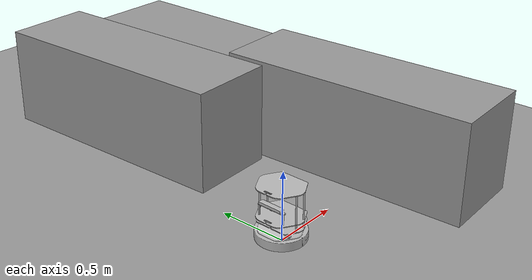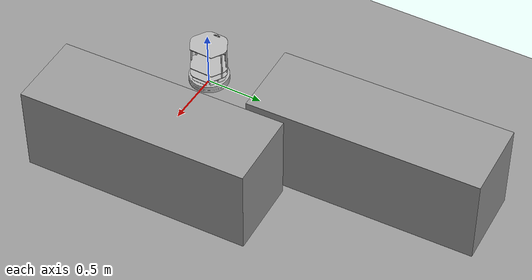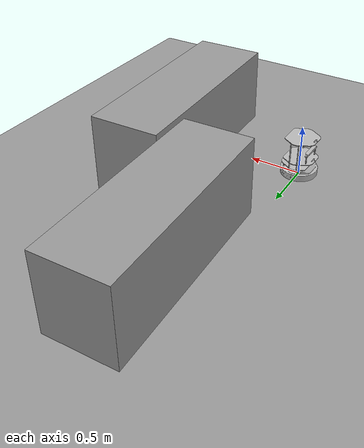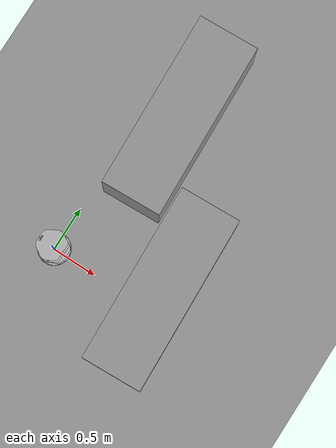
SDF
<sdf version="1.6">
 <world name="default">
  <light name="sun" type="directional">
   <pose>0 0 10 0 -0 0</pose>
   <diffuse>0.8 0.8 0.8 1</diffuse>
   <specular>0.2 0.2 0.2 1</specular>
   <attenuation>
    <range>1000</range>
    <constant>0.9</constant>
    <linear>0.01</linear>
    <quadratic>0.001</quadratic>
   </attenuation>
   <direction>0.5 0.1 -0.9</direction>
  </light>
  <scene><ambient>0.4 0.4 0.4 1</ambient><background>0.7 0.7 0.7 1</background><shadows>1</shadows></scene>
  <physics name="default_physics" default="0" type="ode">
   <max_step_size>0.01</max_step_size>
   <real_time_factor>1</real_time_factor>
   <real_time_update_rate>100</real_time_update_rate>
  </physics>
  <model name="ground_plane_0">
   <static>1</static>
   <link name="link">
    <collision name="collision">
     <geometry><plane><normal>0 0 1</normal><size>100 100</size></plane></geometry>
     <surface><friction><ode><mu>100</mu><mu2>50</mu2></ode></friction></surface>
    </collision>
    <visual name="visual">
     <cast_shadows>0</cast_shadows>
     <geometry><plane><normal>0 0 1</normal><size>100 100</size></plane></geometry>
     <material>
      <script><uri>file://media/materials/scripts/gazebo.material</uri><name>Gazebo/Grey</name></script>
     </material>
    </visual>
    <velocity_decay><linear>0</linear><angular>0</angular></velocity_decay>
   </link>
   <pose>0.497681 0 0 0 -0 0</pose>
  </model>
  <gravity>0 0 -9.8</gravity>
  <magnetic_field>6e-06 2.3e-05 -4.2e-05</magnetic_field>
  <atmosphere type="adiabatic"/>
  <spherical_coordinates>
   <surface_model>EARTH_WGS84</surface_model>
   <latitude_deg>0</latitude_deg>
   <longitude_deg>0</longitude_deg>
   <elevation>0</elevation>
   <heading_deg>0</heading_deg>
  </spherical_coordinates>
  <model name="mobile_base">
   <link name="base_footprint">
    <inertial>
     <pose>-0.002635 -4.1e-05 0.129243 0 -0 0</pose>
     <mass>4.6973</mass>
     <inertia>
      <ixx>0.1365</ixx>
      <ixy>-2.51802e-05</ixy>
      <ixz>0.0108194</ixz>
      <iyy>0.132157</iyy>
      <iyz>4.89572e-05</iyz>
      <izz>0.0741648</izz>
     </inertia>
    </inertial>
    <collision name="base_footprint_fixed_joint_lump__base_collision">
     <pose>0 0 0.06969 0 -0 0</pose>
     <geometry><cylinder><length>0.10938</length><radius>0.178</radius></cylinder></geometry>
    </collision>
    <collision name="base_footprint_fixed_joint_lump__camera_link_collision_1">
     <pose>-0.087 -0.0015 0.2972 0 -0 0</pose>
     <geometry><box><size>0.073 0.276 0.072</size></box></geometry>
    </collision>
    <collision name="base_footprint_fixed_joint_lump__caster_back_link_collision_2">
     <pose>-0.135 0 0.0192 -1.5708 0 0</pose>
     <geometry><cylinder><length>0.0176</length><radius>0.017</radius></cylinder></geometry>
     <surface>
      <contact><ode><kp>1e+06</kp><kd>100</kd><max_vel>1</max_vel><min_depth>0.001</min_depth></ode></contact>
      <friction><ode><mu>0</mu><mu2>0</mu2></ode></friction>
     </surface>
    </collision>
    <collision name="base_footprint_fixed_joint_lump__caster_front_link_collision_3">
     <pose>0.115 0 0.0172 -1.5708 0 0</pose>
     <geometry><cylinder><length>0.0176</length><radius>0.017</radius></cylinder></geometry>
     <surface>
      <contact><ode><kp>1e+06</kp><kd>100</kd><max_vel>1</max_vel><min_depth>0.001</min_depth></ode></contact>
      <friction><ode><mu>0</mu><mu2>0</mu2></ode></friction>
     </surface>
    </collision>
    <collision name="base_footprint_fixed_joint_lump__mount_asus_xtion_pro_link_collision_4">
     <pose>-0.1024 0 0.2822 0 -0 0</pose>
     <geometry><box><size>0.033 0.276 0.012</size></box></geometry>
    </collision>
    <collision name="base_footprint_fixed_joint_lump__plate_bottom_link_collision_5">
     <pose>0 0 0.1408 0 -0 0</pose>
     <geometry><cylinder><length>0.006</length><radius>0.17</radius></cylinder></geometry>
    </collision>
    <collision name="base_footprint_fixed_joint_lump__plate_middle_link_collision_6">
     <pose>0 0 0.1976 0 -0 0</pose>
     <geometry><cylinder><length>0.006</length><radius>0.17</radius></cylinder></geometry>
    </collision>
    <collision name="base_footprint_fixed_joint_lump__plate_top_link_collision_7">
     <pose>0 0 0.4068 0 -0 0</pose>
     <geometry><cylinder><length>0.006</length><radius>0.17</radius></cylinder></geometry>
    </collision>
    <collision name="base_footprint_fixed_joint_lump__pole_bottom_0_link_collision_8">
     <pose>0.12 0.082 0.113 0 -0 0</pose>
     <geometry><cylinder><length>0.0492</length><radius>0.006</radius></cylinder></geometry>
    </collision>
    <collision name="base_footprint_fixed_joint_lump__pole_bottom_1_link_collision_9">
     <pose>0.055 0.12 0.113 0 -0 0</pose>
     <geometry><cylinder><length>0.0492</length><radius>0.006</radius></cylinder></geometry>
    </collision>
    <collision name="base_footprint_fixed_joint_lump__pole_bottom_2_link_collision_10">
     <pose>-0.055 0.12 0.113 0 -0 0</pose>
     <geometry><cylinder><length>0.0492</length><radius>0.006</radius></cylinder></geometry>
    </collision>
    <collision name="base_footprint_fixed_joint_lump__pole_bottom_3_link_collision_11">
     <pose>0.12 -0.082 0.113 0 -0 0</pose>
     <geometry><cylinder><length>0.0492</length><radius>0.006</radius></cylinder></geometry>
    </collision>
    <collision name="base_footprint_fixed_joint_lump__pole_bottom_4_link_collision_12">
     <pose>0.055 -0.12 0.113 0 -0 0</pose>
     <geometry><cylinder><length>0.0492</length><radius>0.006</radius></cylinder></geometry>
    </collision>
    <collision name="base_footprint_fixed_joint_lump__pole_bottom_5_link_collision_13">
     <pose>-0.055 -0.12 0.113 0 -0 0</pose>
     <geometry><cylinder><length>0.0492</length><radius>0.006</radius></cylinder></geometry>
    </collision>
    <collision name="base_footprint_fixed_joint_lump__pole_kinect_0_link_collision_14">
     <pose>-0.1024 0.098 0.2474 0 -0 0</pose>
     <geometry><cylinder><length>0.0936</length><radius>0.006</radius></cylinder></geometry>
    </collision>
    <collision name="base_footprint_fixed_joint_lump__pole_kinect_1_link_collision_15">
     <pose>-0.1024 -0.098 0.2474 0 -0 0</pose>
     <geometry><cylinder><length>0.0936</length><radius>0.006</radius></cylinder></geometry>
    </collision>
    <collision name="base_footprint_fixed_joint_lump__pole_middle_0_link_collision_16">
     <pose>0.0381 0.1505 0.1742 0 -0 0</pose>
     <geometry><cylinder><length>0.0608</length><radius>0.006</radius></cylinder></geometry>
    </collision>
    <collision name="base_footprint_fixed_joint_lump__pole_middle_1_link_collision_17">
     <pose>0.0381 -0.1505 0.1742 0 -0 0</pose>
     <geometry><cylinder><length>0.0608</length><radius>0.006</radius></cylinder></geometry>
    </collision>
    <collision name="base_footprint_fixed_joint_lump__pole_middle_2_link_collision_18">
     <pose>-0.0381 0.1505 0.1742 0 -0 0</pose>
     <geometry><cylinder><length>0.0608</length><radius>0.006</radius></cylinder></geometry>
    </collision>
    <collision name="base_footprint_fixed_joint_lump__pole_middle_3_link_collision_19">
     <pose>-0.0381 -0.1505 0.1742 0 -0 0</pose>
     <geometry><cylinder><length>0.0608</length><radius>0.006</radius></cylinder></geometry>
    </collision>
    <collision name="base_footprint_fixed_joint_lump__pole_top_0_link_collision_20">
     <pose>0.0381 0.1505 0.3022 0 -0 0</pose>
     <geometry><cylinder><length>0.2032</length><radius>0.006</radius></cylinder></geometry>
    </collision>
    <collision name="base_footprint_fixed_joint_lump__pole_top_1_link_collision_21">
     <pose>0.0381 -0.1505 0.3022 0 -0 0</pose>
     <geometry><cylinder><length>0.2032</length><radius>0.006</radius></cylinder></geometry>
    </collision>
    <collision name="base_footprint_fixed_joint_lump__pole_top_2_link_collision_22">
     <pose>-0.0381 0.1505 0.3022 0 -0 0</pose>
     <geometry><cylinder><length>0.2032</length><radius>0.006</radius></cylinder></geometry>
    </collision>
    <collision name="base_footprint_fixed_joint_lump__pole_top_3_link_collision_23">
     <pose>-0.0381 -0.1505 0.3022 0 -0 0</pose>
     <geometry><cylinder><length>0.2032</length><radius>0.006</radius></cylinder></geometry>
    </collision>
    <visual name="base_footprint_fixed_joint_lump__base_link_visual">
     <pose>0.001 0 0.06219 0 -0 0</pose>
     <geometry>
      <mesh><scale>1 1 1</scale><uri>/opt/ros/kinetic/share/kobuki_description/meshes/main_body.dae</uri></mesh>
     </geometry>
     <material><script><uri>__default__</uri><name>__default__</name></script></material>
    </visual>
    <visual name="base_footprint_fixed_joint_lump__camera_link_visual_1">
     <pose>-0.102 0.002 0.3012 0 -0 0</pose>
     <geometry>
      <mesh>
       <scale>1 1 1</scale>
       <uri>/opt/ros/kinetic/share/turtlebot_description/meshes/sensors/xtion_pro_camera.dae</uri>
      </mesh>
     </geometry>
     <material><script><uri>__default__</uri><name>__default__</name></script></material>
    </visual>
    <visual name="base_footprint_fixed_joint_lump__mount_asus_xtion_pro_link_visual_2">
     <pose>-0.1024 0 0.2822 -1.5708 0 0</pose>
     <geometry>
      <mesh>
       <scale>1 1 1</scale>
       <uri>/opt/ros/kinetic/share/turtlebot_description/meshes/sensors/xtion_pro_stack.dae</uri>
      </mesh>
     </geometry>
    </visual>
    <visual name="base_footprint_fixed_joint_lump__plate_bottom_link_visual_3">
     <pose>0.02364 0 0.1408 0 -0 0</pose>
     <geometry>
      <mesh>
       <scale>1 1 1</scale>
       <uri>/opt/ros/kinetic/share/turtlebot_description/meshes/stacks/hexagons/plate_bottom.dae</uri>
      </mesh>
     </geometry>
    </visual>
    <visual name="base_footprint_fixed_joint_lump__plate_middle_link_visual_4">
     <pose>-0.01364 0 0.1976 0 -0 0</pose>
     <geometry>
      <mesh>
       <scale>1 1 1</scale>
       <uri>/opt/ros/kinetic/share/turtlebot_description/meshes/stacks/hexagons/plate_middle.dae</uri>
      </mesh>
     </geometry>
    </visual>
    <visual name="base_footprint_fixed_joint_lump__plate_top_link_visual_5">
     <pose>-0.01364 0 0.4068 0 -0 0</pose>
     <geometry>
      <mesh>
       <scale>1 1 1</scale>
       <uri>/opt/ros/kinetic/share/turtlebot_description/meshes/stacks/hexagons/plate_top.dae</uri>
      </mesh>
     </geometry>
    </visual>
    <visual name="base_footprint_fixed_joint_lump__pole_bottom_0_link_visual_6">
     <pose>0.12 0.082 0.113 0 -0 0</pose>
     <geometry>
      <mesh>
       <scale>1 1 1</scale>
       <uri>/opt/ros/kinetic/share/turtlebot_description/meshes/stacks/hexagons/pole_bottom.dae</uri>
      </mesh>
     </geometry>
    </visual>
    <visual name="base_footprint_fixed_joint_lump__pole_bottom_1_link_visual_7">
     <pose>0.055 0.12 0.113 0 -0 0</pose>
     <geometry>
      <mesh>
       <scale>1 1 1</scale>
       <uri>/opt/ros/kinetic/share/turtlebot_description/meshes/stacks/hexagons/pole_bottom.dae</uri>
      </mesh>
     </geometry>
    </visual>
    <visual name="base_footprint_fixed_joint_lump__pole_bottom_2_link_visual_8">
     <pose>-0.055 0.12 0.113 0 -0 0</pose>
     <geometry>
      <mesh>
       <scale>1 1 1</scale>
       <uri>/opt/ros/kinetic/share/turtlebot_description/meshes/stacks/hexagons/pole_bottom.dae</uri>
      </mesh>
     </geometry>
    </visual>
    <visual name="base_footprint_fixed_joint_lump__pole_bottom_3_link_visual_9">
     <pose>0.12 -0.082 0.113 0 -0 0</pose>
     <geometry>
      <mesh>
       <scale>1 1 1</scale>
       <uri>/opt/ros/kinetic/share/turtlebot_description/meshes/stacks/hexagons/pole_bottom.dae</uri>
      </mesh>
     </geometry>
    </visual>
    <visual name="base_footprint_fixed_joint_lump__pole_bottom_4_link_visual_10">
     <pose>0.055 -0.12 0.113 0 -0 0</pose>
     <geometry>
      <mesh>
       <scale>1 1 1</scale>
       <uri>/opt/ros/kinetic/share/turtlebot_description/meshes/stacks/hexagons/pole_bottom.dae</uri>
      </mesh>
     </geometry>
    </visual>
    <visual name="base_footprint_fixed_joint_lump__pole_bottom_5_link_visual_11">
     <pose>-0.055 -0.12 0.113 0 -0 0</pose>
     <geometry>
      <mesh>
       <scale>1 1 1</scale>
       <uri>/opt/ros/kinetic/share/turtlebot_description/meshes/stacks/hexagons/pole_bottom.dae</uri>
      </mesh>
     </geometry>
    </visual>
    <visual name="base_footprint_fixed_joint_lump__pole_kinect_0_link_visual_12">
     <pose>-0.1024 0.098 0.2374 0 -0 0</pose>
     <geometry>
      <mesh>
       <scale>1 1 1</scale>
       <uri>/opt/ros/kinetic/share/turtlebot_description/meshes/sensors/sensor_pole.dae</uri>
      </mesh>
     </geometry>
    </visual>
    <visual name="base_footprint_fixed_joint_lump__pole_kinect_1_link_visual_13">
     <pose>-0.1024 -0.098 0.2374 0 -0 0</pose>
     <geometry>
      <mesh>
       <scale>1 1 1</scale>
       <uri>/opt/ros/kinetic/share/turtlebot_description/meshes/sensors/sensor_pole.dae</uri>
      </mesh>
     </geometry>
    </visual>
    <visual name="base_footprint_fixed_joint_lump__pole_middle_0_link_visual_14">
     <pose>0.0381 0.1505 0.1742 3.14159 -0 3.14159</pose>
     <geometry>
      <mesh>
       <scale>1 1 1</scale>
       <uri>/opt/ros/kinetic/share/turtlebot_description/meshes/stacks/hexagons/pole_middle.dae</uri>
      </mesh>
     </geometry>
    </visual>
    <visual name="base_footprint_fixed_joint_lump__pole_middle_1_link_visual_15">
     <pose>0.0381 -0.1505 0.1742 3.14159 -0 3.14159</pose>
     <geometry>
      <mesh>
       <scale>1 1 1</scale>
       <uri>/opt/ros/kinetic/share/turtlebot_description/meshes/stacks/hexagons/pole_middle.dae</uri>
      </mesh>
     </geometry>
    </visual>
    <visual name="base_footprint_fixed_joint_lump__pole_middle_2_link_visual_16">
     <pose>-0.0381 0.1505 0.1742 3.14159 -0 3.14159</pose>
     <geometry>
      <mesh>
       <scale>1 1 1</scale>
       <uri>/opt/ros/kinetic/share/turtlebot_description/meshes/stacks/hexagons/pole_middle.dae</uri>
      </mesh>
     </geometry>
    </visual>
    <visual name="base_footprint_fixed_joint_lump__pole_middle_3_link_visual_17">
     <pose>-0.0381 -0.1505 0.1742 3.14159 -0 3.14159</pose>
     <geometry>
      <mesh>
       <scale>1 1 1</scale>
       <uri>/opt/ros/kinetic/share/turtlebot_description/meshes/stacks/hexagons/pole_middle.dae</uri>
      </mesh>
     </geometry>
    </visual>
    <visual name="base_footprint_fixed_joint_lump__pole_top_0_link_visual_18">
     <pose>0.0381 0.1505 0.3022 0 -0 0</pose>
     <geometry>
      <mesh>
       <scale>1 1 1</scale>
       <uri>/opt/ros/kinetic/share/turtlebot_description/meshes/stacks/hexagons/pole_top.dae</uri>
      </mesh>
     </geometry>
    </visual>
    <visual name="base_footprint_fixed_joint_lump__pole_top_1_link_visual_19">
     <pose>0.0381 -0.1505 0.3022 0 -0 0</pose>
     <geometry>
      <mesh>
       <scale>1 1 1</scale>
       <uri>/opt/ros/kinetic/share/turtlebot_description/meshes/stacks/hexagons/pole_top.dae</uri>
      </mesh>
     </geometry>
    </visual>
    <visual name="base_footprint_fixed_joint_lump__pole_top_2_link_visual_20">
     <pose>-0.0381 0.1505 0.3022 0 -0 0</pose>
     <geometry>
      <mesh>
       <scale>1 1 1</scale>
       <uri>/opt/ros/kinetic/share/turtlebot_description/meshes/stacks/hexagons/pole_top.dae</uri>
      </mesh>
     </geometry>
    </visual>
    <visual name="base_footprint_fixed_joint_lump__pole_top_3_link_visual_21">
     <pose>-0.0381 -0.1505 0.3022 0 -0 0</pose>
     <geometry>
      <mesh>
       <scale>1 1 1</scale>
       <uri>/opt/ros/kinetic/share/turtlebot_description/meshes/stacks/hexagons/pole_top.dae</uri>
      </mesh>
     </geometry>
    </visual>
    <sensor name="bumpers" type="contact">
     <always_on>1</always_on>
     <update_rate>50</update_rate>
     <visualize>1</visualize>
     <contact>
      <collision>base_footprint_fixed_joint_lump__base_collision</collision>
      <topic>__default_topic__</topic>
     </contact>
     <pose>0 0 0.0102 0 -0 0</pose>
    </sensor>
    <sensor name="camera" type="depth">
     <always_on>1</always_on>
     <update_rate>20</update_rate>
     <camera name="__default__">
      <horizontal_fov>1.0472</horizontal_fov>
      <image><format>B8G8R8</format><width>640</width><height>480</height></image>
      <clip><near>0.05</near><far>8</far></clip>
     </camera>
     <plugin name="kinect_camera_controller" filename="libgazebo_ros_openni_kinect.so">
      <cameraName>camera</cameraName>
      <alwaysOn>true</alwaysOn>
      <updateRate>10</updateRate>
      <imageTopicName>rgb/image_raw</imageTopicName>
      <depthImageTopicName>depth/image_raw</depthImageTopicName>
      <pointCloudTopicName>depth/points</pointCloudTopicName>
      <cameraInfoTopicName>rgb/camera_info</cameraInfoTopicName>
      <depthImageCameraInfoTopicName>depth/camera_info</depthImageCameraInfoTopicName>
      <frameName>camera_depth_optical_frame</frameName>
      <baseline>0.1</baseline>
      <distortion_k1>0.0</distortion_k1>
      <distortion_k2>0.0</distortion_k2>
      <distortion_k3>0.0</distortion_k3>
      <distortion_t1>0.0</distortion_t1>
      <distortion_t2>0.0</distortion_t2>
      <pointCloudCutoff>0.4</pointCloudCutoff>
      <robotNamespace>/</robotNamespace>
     </plugin>
     <pose>-0.087 -0.0015 0.2972 0 -0 0</pose>
    </sensor>
    <sensor name="cliff_sensor_front" type="ray">
     <always_on>1</always_on>
     <update_rate>50</update_rate>
     <visualize>1</visualize>
     <ray>
      <scan>
       <horizontal>
        <samples>50</samples>
        <resolution>1</resolution>
        <min_angle>-0.0436</min_angle>
        <max_angle>0.0436</max_angle>
       </horizontal>
       <vertical><samples>1</samples><min_angle>0</min_angle><max_angle>0</max_angle></vertical>
      </scan>
      <range><min>0.01</min><max>0.15</max><resolution>1</resolution></range>
     </ray>
     <pose>0.156 0 0.0316 3.14159 1.57079 3.14159</pose>
    </sensor>
    <sensor name="cliff_sensor_left" type="ray">
     <always_on>1</always_on>
     <update_rate>50</update_rate>
     <visualize>1</visualize>
     <ray>
      <scan>
       <horizontal>
        <samples>50</samples>
        <resolution>1</resolution>
        <min_angle>-0.0436</min_angle>
        <max_angle>0.0436</max_angle>
       </horizontal>
       <vertical><samples>1</samples><min_angle>0</min_angle><max_angle>0</max_angle></vertical>
      </scan>
      <range><min>0.01</min><max>0.15</max><resolution>1</resolution></range>
     </ray>
     <pose>0.08734 0.13601 0.0316 3.14159 1.57079 3.14159</pose>
    </sensor>
    <sensor name="cliff_sensor_right" type="ray">
     <always_on>1</always_on>
     <update_rate>50</update_rate>
     <visualize>1</visualize>
     <ray>
      <scan>
       <horizontal>
        <samples>50</samples>
        <resolution>1</resolution>
        <min_angle>-0.0436</min_angle>
        <max_angle>0.0436</max_angle>
       </horizontal>
       <vertical><samples>1</samples><min_angle>0</min_angle><max_angle>0</max_angle></vertical>
      </scan>
      <range><min>0.01</min><max>0.15</max><resolution>1</resolution></range>
     </ray>
     <pose>0.085 -0.13601 0.0316 3.14159 1.57079 3.14159</pose>
    </sensor>
    <sensor name="imu" type="imu">
     <always_on>1</always_on>
     <update_rate>50</update_rate>
     <visualize>0</visualize>
     <imu>
      <angular_velocity>
       <x>
        <noise type="gaussian">
         <mean>0</mean>
         <stddev>1.96e-06</stddev>
         <bias_mean>0</bias_mean>
         <bias_stddev>0</bias_stddev>
        </noise>
       </x>
       <y>
        <noise type="gaussian">
         <mean>0</mean>
         <stddev>1.96e-06</stddev>
         <bias_mean>0</bias_mean>
         <bias_stddev>0</bias_stddev>
        </noise>
       </y>
       <z>
        <noise type="gaussian">
         <mean>0</mean>
         <stddev>1.96e-06</stddev>
         <bias_mean>0</bias_mean>
         <bias_stddev>0</bias_stddev>
        </noise>
       </z>
      </angular_velocity>
      <linear_acceleration>
       <x>
        <noise type="gaussian">
         <mean>0</mean>
         <stddev>0.017</stddev>
         <bias_mean>0.1</bias_mean>
         <bias_stddev>0.001</bias_stddev>
        </noise>
       </x>
       <y>
        <noise type="gaussian">
         <mean>0</mean>
         <stddev>0.017</stddev>
         <bias_mean>0.1</bias_mean>
         <bias_stddev>0.001</bias_stddev>
        </noise>
       </y>
       <z>
        <noise type="gaussian">
         <mean>0</mean>
         <stddev>0.017</stddev>
         <bias_mean>0.1</bias_mean>
         <bias_stddev>0.001</bias_stddev>
        </noise>
       </z>
      </linear_acceleration>
     </imu>
     <pose>0.056 0.062 0.0304 0 -0 0</pose>
    </sensor>
   </link>
   <link name="wheel_left_link">
    <pose>0 0.115 0.0352 -1.5708 0 0</pose>
    <inertial>
     <mass>0.01</mass>
     <inertia><ixx>0.001</ixx><ixy>0</ixy><ixz>0</ixz><iyy>0.001</iyy><iyz>0</iyz><izz>0.001</izz></inertia>
    </inertial>
    <collision name="wheel_left_link_collision">
     <geometry><cylinder><length>0.0206</length><radius>0.0352</radius></cylinder></geometry>
     <surface>
      <contact><ode><kp>1e+06</kp><kd>100</kd><max_vel>1</max_vel><min_depth>0.001</min_depth></ode></contact>
      <friction><ode><mu>1</mu><mu2>1</mu2></ode></friction>
     </surface>
    </collision>
    <visual name="wheel_left_link_visual">
     <geometry>
      <mesh><scale>1 1 1</scale><uri>/opt/ros/kinetic/share/kobuki_description/meshes/wheel.dae</uri></mesh>
     </geometry>
     <material><script><uri>__default__</uri><name>__default__</name></script></material>
    </visual>
   </link>
   <joint name="wheel_left_joint" type="revolute">
    <child>wheel_left_link</child>
    <parent>base_footprint</parent>
    <axis>
     <xyz>0 1 0</xyz>
     <limit><lower>-1e+16</lower><upper>1e+16</upper></limit>
     <dynamics><spring_reference>0</spring_reference><spring_stiffness>0</spring_stiffness></dynamics>
     <use_parent_model_frame>1</use_parent_model_frame>
    </axis>
   </joint>
   <link name="wheel_right_link">
    <pose>0 -0.115 0.0352 -1.5708 0 0</pose>
    <inertial>
     <mass>0.01</mass>
     <inertia><ixx>0.001</ixx><ixy>0</ixy><ixz>0</ixz><iyy>0.001</iyy><iyz>0</iyz><izz>0.001</izz></inertia>
    </inertial>
    <collision name="wheel_right_link_collision">
     <geometry><cylinder><length>0.0206</length><radius>0.035</radius></cylinder></geometry>
     <surface>
      <contact><ode><kp>1e+06</kp><kd>100</kd><max_vel>1</max_vel><min_depth>0.001</min_depth></ode></contact>
      <friction><ode><mu>1</mu><mu2>1</mu2></ode></friction>
     </surface>
    </collision>
    <visual name="wheel_right_link_visual">
     <geometry>
      <mesh><scale>1 1 1</scale><uri>/opt/ros/kinetic/share/kobuki_description/meshes/wheel.dae</uri></mesh>
     </geometry>
     <material><script><uri>__default__</uri><name>__default__</name></script></material>
    </visual>
   </link>
   <joint name="wheel_right_joint" type="revolute">
    <child>wheel_right_link</child>
    <parent>base_footprint</parent>
    <axis>
     <xyz>0 1 0</xyz>
     <limit><lower>-1e+16</lower><upper>1e+16</upper></limit>
     <dynamics><spring_reference>0</spring_reference><spring_stiffness>0</spring_stiffness></dynamics>
     <use_parent_model_frame>1</use_parent_model_frame>
    </axis>
   </joint>
   <static>0</static>
   <plugin name="kobuki_controller" filename="libgazebo_ros_kobuki.so">
    <publish_tf>1</publish_tf>
    <left_wheel_joint_name>wheel_left_joint</left_wheel_joint_name>
    <right_wheel_joint_name>wheel_right_joint</right_wheel_joint_name>
    <wheel_separation>.230</wheel_separation>
    <wheel_diameter>0.070</wheel_diameter>
    <torque>1.0</torque>
    <velocity_command_timeout>0.6</velocity_command_timeout>
    <cliff_sensor_left_name>cliff_sensor_left</cliff_sensor_left_name>
    <cliff_sensor_center_name>cliff_sensor_front</cliff_sensor_center_name>
    <cliff_sensor_right_name>cliff_sensor_right</cliff_sensor_right_name>
    <cliff_detection_threshold>0.04</cliff_detection_threshold>
    <bumper_name>bumpers</bumper_name>
    <imu_name>imu</imu_name>
    <robotNamespace>/</robotNamespace>
   </plugin>
   <pose>0.000417 0.006973 -0.001131 6.8e-05 -0.007997 -0.021932</pose>
  </model>
  <model name="unit_box_0_clone_clone">
   <pose>1.18166 0.205022 0.379275 -0.000641 -0.000211 0.034322</pose>
   <link name="link">
    <inertial>
     <mass>1</mass>
     <inertia>
      <ixx>0.166667</ixx>
      <ixy>0</ixy>
      <ixz>0</ixz>
      <iyy>0.166667</iyy>
      <iyz>0</iyz>
      <izz>0.166667</izz>
     </inertia>
    </inertial>
    <collision name="collision"><geometry><box><size>0.668229 1.9673 0.759953</size></box></geometry></collision>
    <visual name="visual">
     <geometry><box><size>0.668229 1.9673 0.759953</size></box></geometry>
     <material>
      <script><name>Gazebo/Grey</name><uri>file://media/materials/scripts/gazebo.material</uri></script>
     </material>
    </visual>
   </link>
  </model>
  <model name="unit_box_0_clone_clone_0">
   <pose>0.402471 1.78834 0.379984 -0 -2.2e-05 0.034375</pose>
   <link name="link">
    <inertial>
     <mass>1</mass>
     <inertia>
      <ixx>0.166667</ixx>
      <ixy>0</ixy>
      <ixz>0</ixz>
      <iyy>0.166667</iyy>
      <iyz>0</iyz>
      <izz>0.166667</izz>
     </inertia>
    </inertial>
    <collision name="collision"><geometry><box><size>0.668229 1.9673 0.759953</size></box></geometry></collision>
    <visual name="visual">
     <geometry><box><size>0.668229 1.9673 0.759953</size></box></geometry>
     <material>
      <script><name>Gazebo/Grey</name><uri>file://media/materials/scripts/gazebo.material</uri></script>
     </material>
    </visual>
   </link>
  </model>
 </world>
</sdf>
